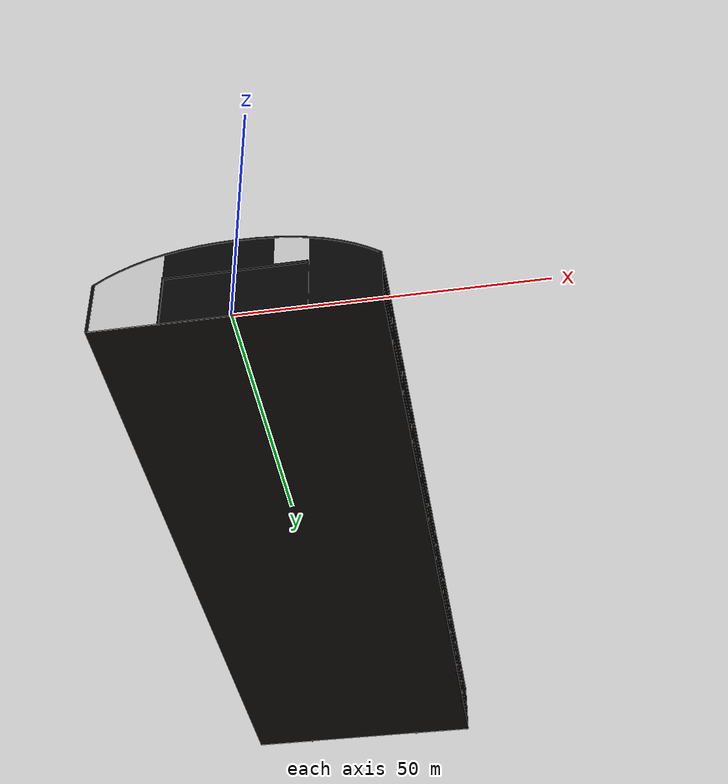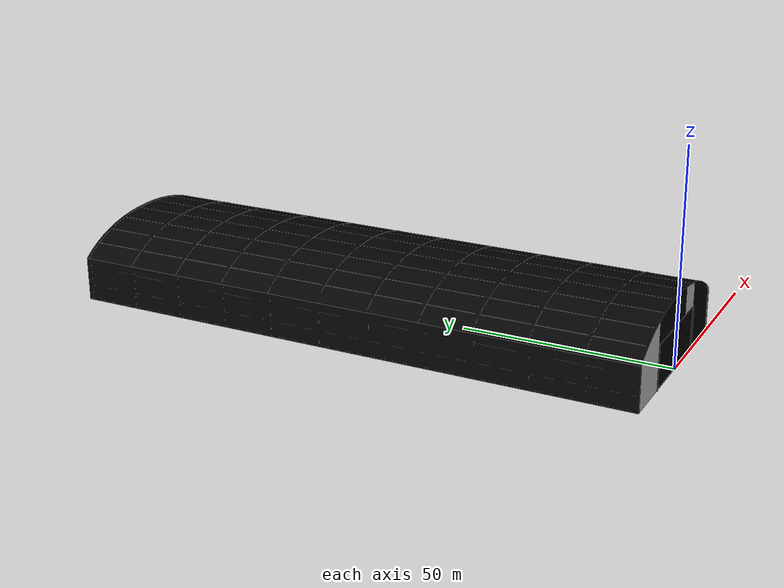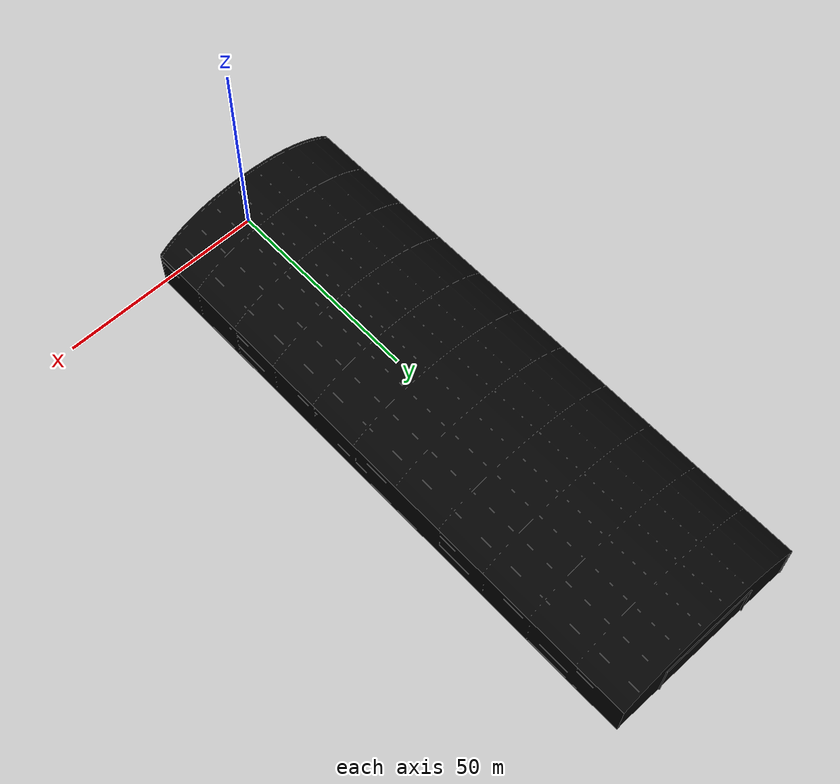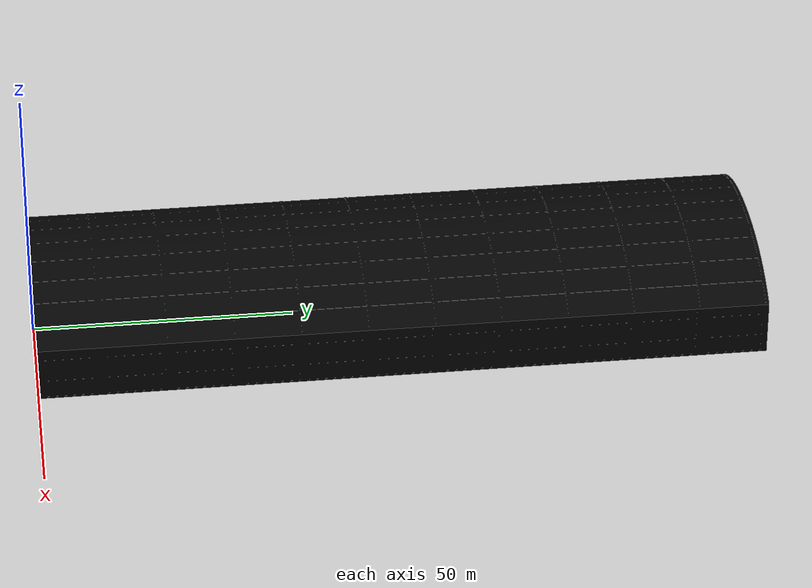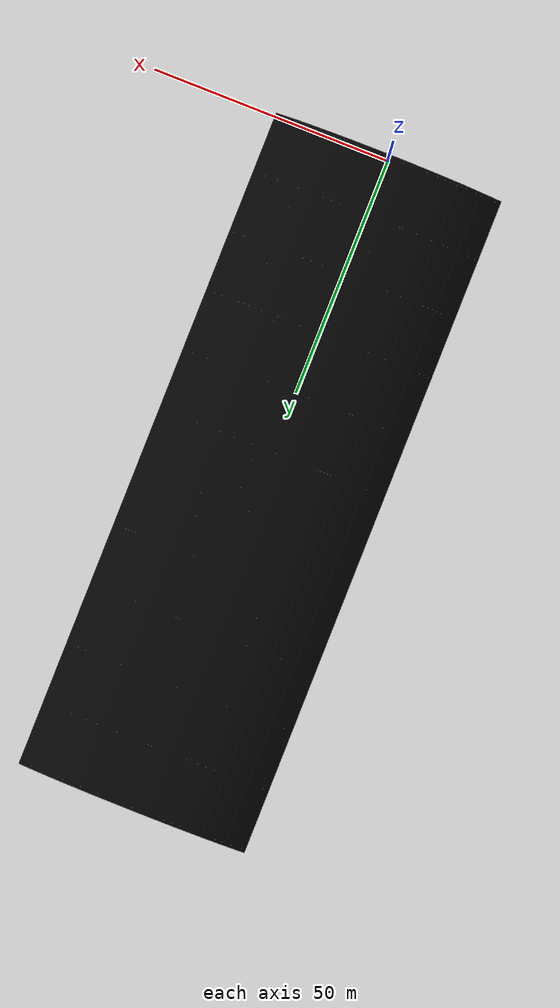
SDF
<sdf version="1.9">
  <model name="stock_pavilion">
    <static>true</static>

    <link name="link">
      <visual name="visual">
        <geometry>
          <mesh>
            <uri>model://stock_pavilion/meshes/stock_pavilion.dae</uri>
          </mesh>
        </geometry>
      </visual>

      <collision name="collision">
        <geometry>
          <mesh>
            <uri>model://stock_pavilion/meshes/stock_pavilion.dae</uri>
          </mesh>
        </geometry>
      </collision>
    </link>
  </model>
</sdf>
